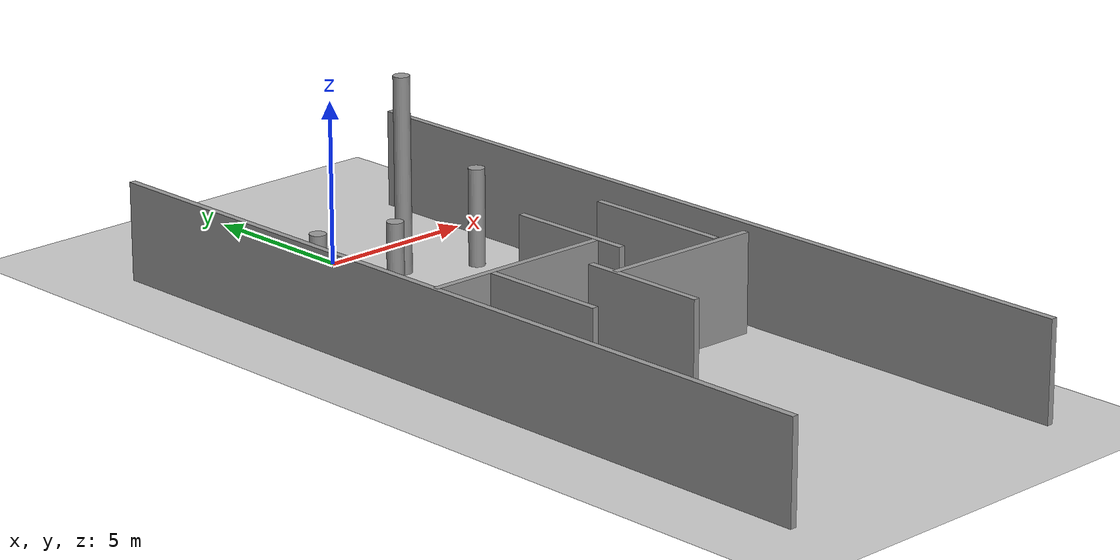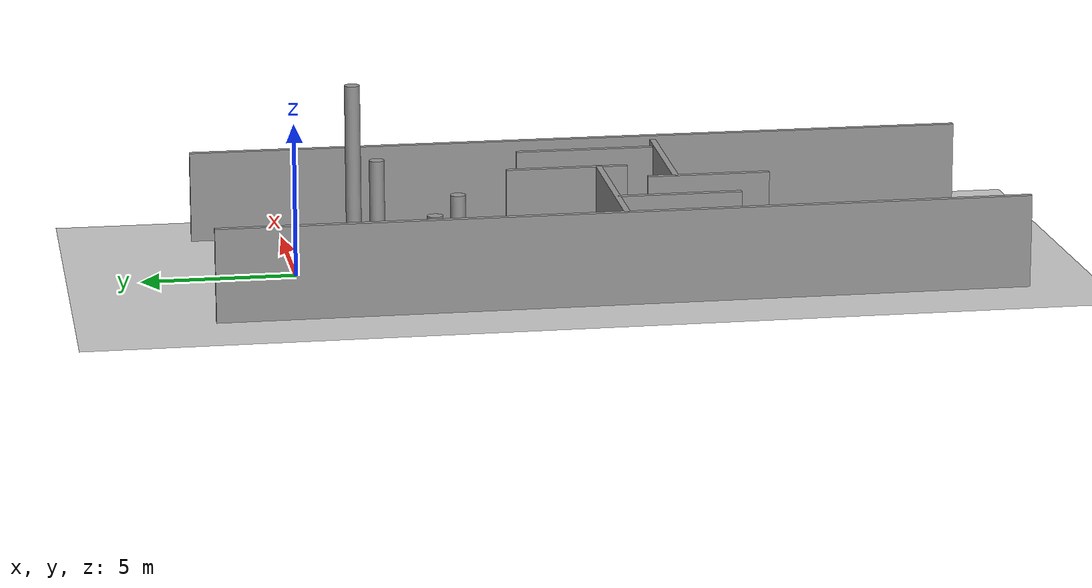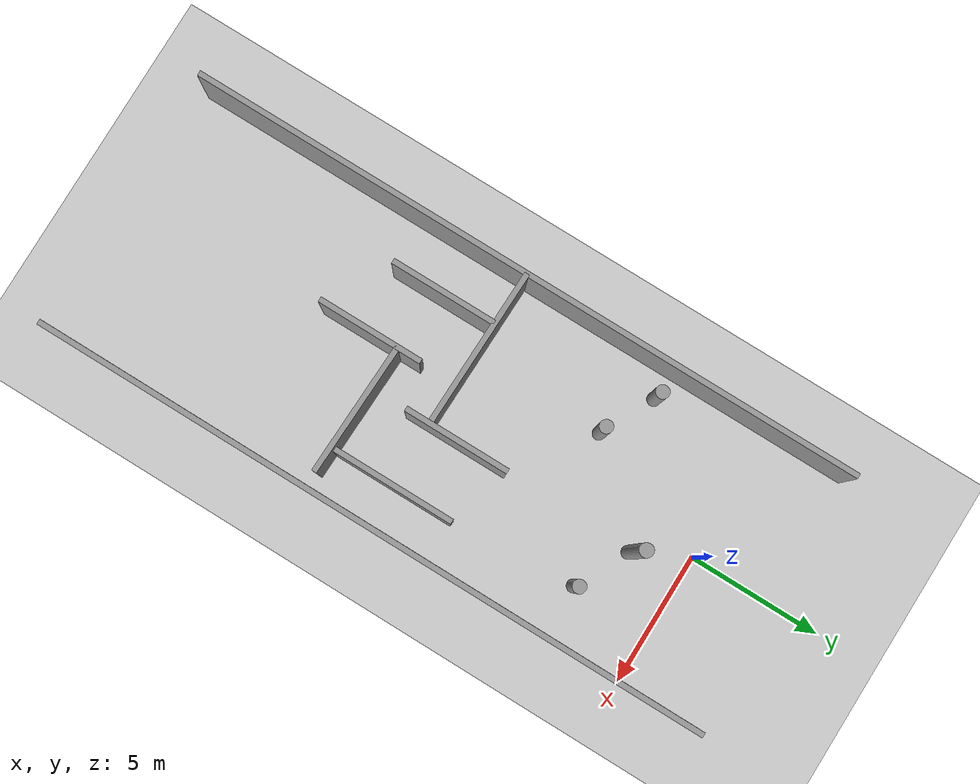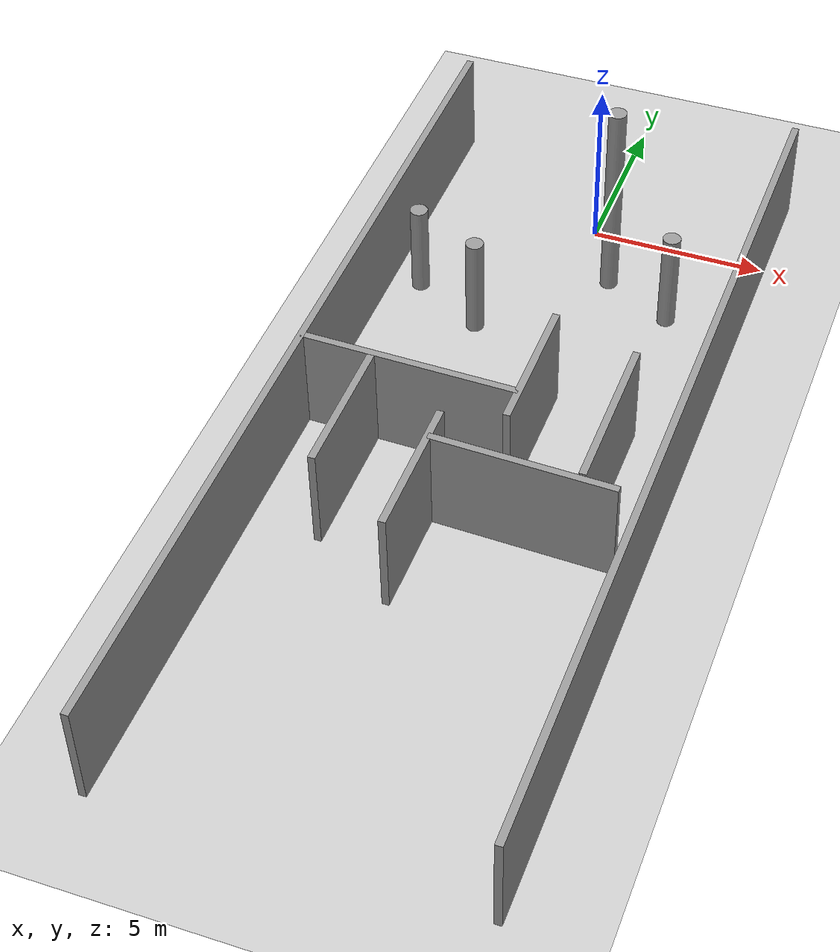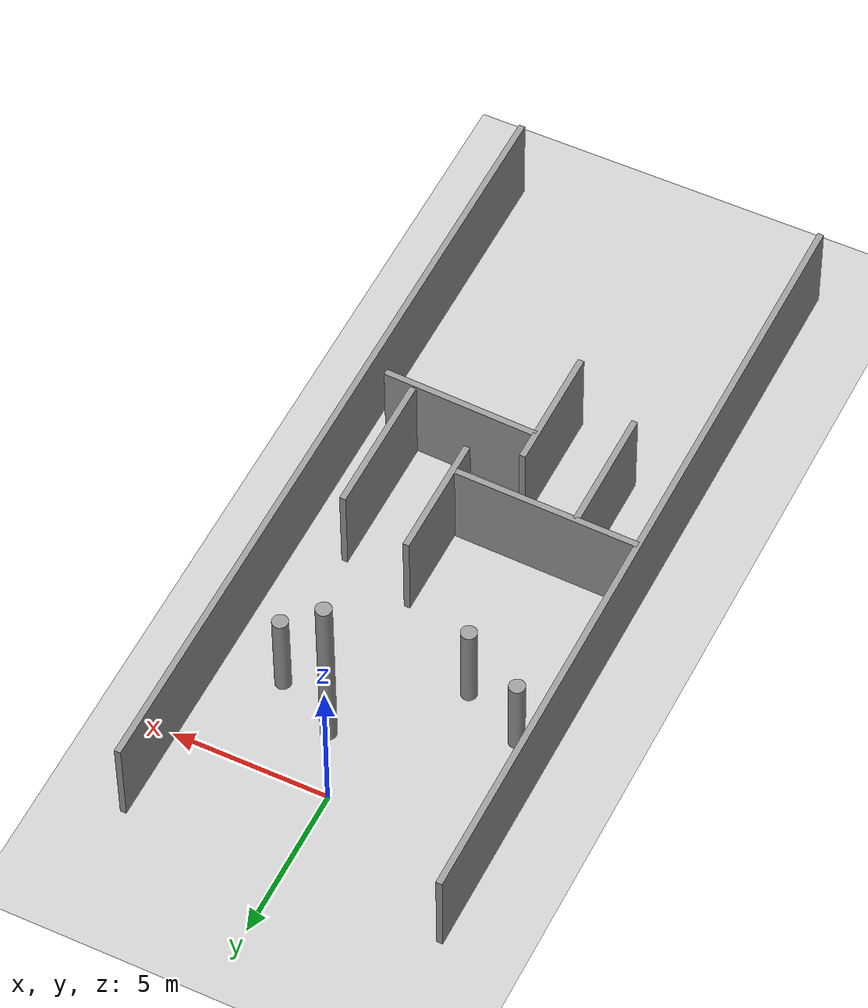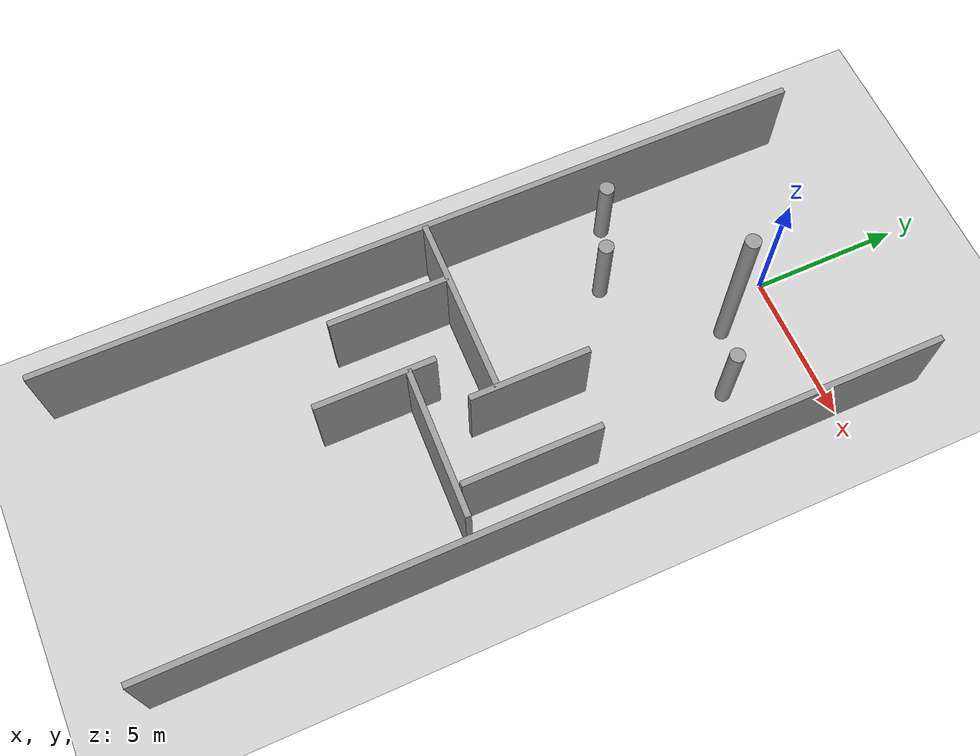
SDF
<sdf version="1.6">
 <world name="default">
  <model name="ground_plane">
   <static>1</static>
   <link name="link">
    <collision name="collision">
     <geometry><plane><normal>0 0 1</normal><size>100 100</size></plane></geometry>
     <surface><friction><ode><mu>100</mu><mu2>50</mu2></ode></friction></surface>
    </collision>
    <visual name="visual">
     <cast_shadows>0</cast_shadows>
     <geometry><plane><normal>0 0 1</normal><size>100 100</size></plane></geometry>
     <material>
      <script><uri>file://media/materials/scripts/gazebo.material</uri><name>Gazebo/Grey</name></script>
     </material>
    </visual>
    <velocity_decay><linear>0</linear><angular>0</angular></velocity_decay>
   </link>
  </model>
  <model name="obstacle1">
   <link name="link">
    <inertial>
     <mass>1</mass>
     <inertia>
      <ixx>0.166667</ixx>
      <ixy>0</ixy>
      <ixz>0</ixz>
      <iyy>0.166667</iyy>
      <iyz>0</iyz>
      <izz>0.166667</izz>
     </inertia>
    </inertial>
    <visual name="visual">
     <geometry><box><size>0.2 4.6 3</size></box></geometry>
     <material>
      <script><name>Gazebo/Grey</name><uri>file://media/materials/scripts/gazebo.material</uri></script>
      <ambient>0.3 0.3 0.3 1</ambient>
      <diffuse>0.7 0.7 0.7 1</diffuse>
      <specular>0.01 0.01 0.01 1</specular>
      <emissive>0 0 0 1</emissive>
      <shader type="vertex"><normal_map>__default__</normal_map></shader>
     </material>
    </visual>
    <collision name="collision">
     <geometry><box><size>0.2 4.6 3</size></box></geometry>
     <surface>
      <friction>
       <ode><mu>1</mu><mu2>1</mu2><fdir1>0 0 0</fdir1><slip1>0</slip1><slip2>0</slip2></ode>
       <torsional>
        <coefficient>1</coefficient>
        <patch_radius>0</patch_radius>
        <surface_radius>0</surface_radius>
        <use_patch_radius>1</use_patch_radius>
        <ode><slip>0</slip></ode>
       </torsional>
      </friction>
      <bounce><restitution_coefficient>0</restitution_coefficient><threshold>1e+06</threshold></bounce>
      <contact>
       <collide_without_contact>0</collide_without_contact>
       <collide_without_contact_bitmask>1</collide_without_contact_bitmask>
       <collide_bitmask>1</collide_bitmask>
       <ode>
        <soft_cfm>0</soft_cfm>
        <soft_erp>0.2</soft_erp>
        <kp>1e+13</kp>
        <kd>1</kd>
        <max_vel>0.01</max_vel>
        <min_depth>0</min_depth>
       </ode>
       <bullet>
        <split_impulse>1</split_impulse>
        <split_impulse_penetration_threshold>-0.01</split_impulse_penetration_threshold>
        <soft_cfm>0</soft_cfm>
        <soft_erp>0.2</soft_erp>
        <kp>1e+13</kp>
        <kd>1</kd>
       </bullet>
      </contact>
     </surface>
    </collision>
   </link>
   <static>1</static>
   <pose>3.4 -10 1.5 0 -0 0</pose>
  </model>
  <model name="obstacle2">
   <link name="link">
    <inertial>
     <mass>1</mass>
     <inertia>
      <ixx>0.166667</ixx>
      <ixy>0</ixy>
      <ixz>0</ixz>
      <iyy>0.166667</iyy>
      <iyz>0</iyz>
      <izz>0.166667</izz>
     </inertia>
    </inertial>
    <visual name="visual">
     <geometry><box><size>0.2 5 3</size></box></geometry>
     <material>
      <script><name>Gazebo/Grey</name><uri>file://media/materials/scripts/gazebo.material</uri></script>
      <ambient>0.3 0.3 0.3 1</ambient>
      <diffuse>0.7 0.7 0.7 1</diffuse>
      <specular>0.01 0.01 0.01 1</specular>
      <emissive>0 0 0 1</emissive>
      <shader type="vertex"><normal_map>__default__</normal_map></shader>
     </material>
    </visual>
    <collision name="collision">
     <geometry><box><size>0.2 5 3</size></box></geometry>
     <surface>
      <friction>
       <ode><mu>1</mu><mu2>1</mu2><fdir1>0 0 0</fdir1><slip1>0</slip1><slip2>0</slip2></ode>
       <torsional>
        <coefficient>1</coefficient>
        <patch_radius>0</patch_radius>
        <surface_radius>0</surface_radius>
        <use_patch_radius>1</use_patch_radius>
        <ode><slip>0</slip></ode>
       </torsional>
      </friction>
      <bounce><restitution_coefficient>0</restitution_coefficient><threshold>1e+06</threshold></bounce>
      <contact>
       <collide_without_contact>0</collide_without_contact>
       <collide_without_contact_bitmask>1</collide_without_contact_bitmask>
       <collide_bitmask>1</collide_bitmask>
       <ode>
        <soft_cfm>0</soft_cfm>
        <soft_erp>0.2</soft_erp>
        <kp>1e+13</kp>
        <kd>1</kd>
        <max_vel>0.01</max_vel>
        <min_depth>0</min_depth>
       </ode>
       <bullet>
        <split_impulse>1</split_impulse>
        <split_impulse_penetration_threshold>-0.01</split_impulse_penetration_threshold>
        <soft_cfm>0</soft_cfm>
        <soft_erp>0.2</soft_erp>
        <kp>1e+13</kp>
        <kd>1</kd>
       </bullet>
      </contact>
     </surface>
    </collision>
   </link>
   <static>1</static>
   <pose>1.9 -12.4 1.5 0 -0 1.53692</pose>
  </model>
  <model name="obstacle3">
   <link name="link">
    <inertial>
     <mass>1</mass>
     <inertia>
      <ixx>0.166667</ixx>
      <ixy>0</ixy>
      <ixz>0</ixz>
      <iyy>0.166667</iyy>
      <iyz>0</iyz>
      <izz>0.166667</izz>
     </inertia>
    </inertial>
    <visual name="visual">
     <geometry><box><size>0.2 4 3</size></box></geometry>
     <material>
      <script><name>Gazebo/Grey</name><uri>file://media/materials/scripts/gazebo.material</uri></script>
      <ambient>0.3 0.3 0.3 1</ambient>
      <diffuse>0.7 0.7 0.7 1</diffuse>
      <specular>0.01 0.01 0.01 1</specular>
      <emissive>0 0 0 1</emissive>
      <shader type="vertex"><normal_map>__default__</normal_map></shader>
     </material>
    </visual>
    <collision name="collision">
     <geometry><box><size>0.2 4 3</size></box></geometry>
     <surface>
      <friction>
       <ode><mu>1</mu><mu2>1</mu2><fdir1>0 0 0</fdir1><slip1>0</slip1><slip2>0</slip2></ode>
       <torsional>
        <coefficient>1</coefficient>
        <patch_radius>0</patch_radius>
        <surface_radius>0</surface_radius>
        <use_patch_radius>1</use_patch_radius>
        <ode><slip>0</slip></ode>
       </torsional>
      </friction>
      <bounce><restitution_coefficient>0</restitution_coefficient><threshold>1e+06</threshold></bounce>
      <contact>
       <collide_without_contact>0</collide_without_contact>
       <collide_without_contact_bitmask>1</collide_without_contact_bitmask>
       <collide_bitmask>1</collide_bitmask>
       <ode>
        <soft_cfm>0</soft_cfm>
        <soft_erp>0.2</soft_erp>
        <kp>1e+13</kp>
        <kd>1</kd>
        <max_vel>0.01</max_vel>
        <min_depth>0</min_depth>
       </ode>
       <bullet>
        <split_impulse>1</split_impulse>
        <split_impulse_penetration_threshold>-0.01</split_impulse_penetration_threshold>
        <soft_cfm>0</soft_cfm>
        <soft_erp>0.2</soft_erp>
        <kp>1e+13</kp>
        <kd>1</kd>
       </bullet>
      </contact>
     </surface>
    </collision>
   </link>
   <static>1</static>
   <pose>-0.6 -13.4 1.5 0 -0 0</pose>
  </model>
  <model name="obstacle4">
   <link name="link">
    <inertial>
     <mass>1</mass>
     <inertia>
      <ixx>0.166667</ixx>
      <ixy>0</ixy>
      <ixz>0</ixz>
      <iyy>0.166667</iyy>
      <iyz>0</iyz>
      <izz>0.166667</izz>
     </inertia>
    </inertial>
    <visual name="visual">
     <geometry><box><size>0.2 6 3</size></box></geometry>
     <material>
      <script><name>Gazebo/Grey</name><uri>file://media/materials/scripts/gazebo.material</uri></script>
      <ambient>0.3 0.3 0.3 1</ambient>
      <diffuse>0.7 0.7 0.7 1</diffuse>
      <specular>0.01 0.01 0.01 1</specular>
      <emissive>0 0 0 1</emissive>
      <shader type="vertex"><normal_map>__default__</normal_map></shader>
     </material>
    </visual>
    <collision name="collision">
     <geometry><box><size>0.2 6 3</size></box></geometry>
     <surface>
      <friction>
       <ode><mu>1</mu><mu2>1</mu2><fdir1>0 0 0</fdir1><slip1>0</slip1><slip2>0</slip2></ode>
       <torsional>
        <coefficient>1</coefficient>
        <patch_radius>0</patch_radius>
        <surface_radius>0</surface_radius>
        <use_patch_radius>1</use_patch_radius>
        <ode><slip>0</slip></ode>
       </torsional>
      </friction>
      <bounce><restitution_coefficient>0</restitution_coefficient><threshold>1e+06</threshold></bounce>
      <contact>
       <collide_without_contact>0</collide_without_contact>
       <collide_without_contact_bitmask>1</collide_without_contact_bitmask>
       <collide_bitmask>1</collide_bitmask>
       <ode>
        <soft_cfm>0</soft_cfm>
        <soft_erp>0.2</soft_erp>
        <kp>1e+13</kp>
        <kd>1</kd>
        <max_vel>0.01</max_vel>
        <min_depth>0</min_depth>
       </ode>
       <bullet>
        <split_impulse>1</split_impulse>
        <split_impulse_penetration_threshold>-0.01</split_impulse_penetration_threshold>
        <soft_cfm>0</soft_cfm>
        <soft_erp>0.2</soft_erp>
        <kp>1e+13</kp>
        <kd>1</kd>
       </bullet>
      </contact>
     </surface>
    </collision>
   </link>
   <static>1</static>
   <pose>-2 -10 1.5 0 -0 1.54887</pose>
  </model>
  <model name="obstacle5">
   <link name="link">
    <inertial>
     <mass>1</mass>
     <inertia>
      <ixx>0.166667</ixx>
      <ixy>0</ixy>
      <ixz>0</ixz>
      <iyy>0.166667</iyy>
      <iyz>0</iyz>
      <izz>0.166667</izz>
     </inertia>
    </inertial>
    <visual name="visual">
     <geometry><box><size>0.2 4 3</size></box></geometry>
     <material>
      <script><name>Gazebo/Grey</name><uri>file://media/materials/scripts/gazebo.material</uri></script>
      <ambient>0.3 0.3 0.3 1</ambient>
      <diffuse>0.7 0.7 0.7 1</diffuse>
      <specular>0.01 0.01 0.01 1</specular>
      <emissive>0 0 0 1</emissive>
      <shader type="vertex"><normal_map>__default__</normal_map></shader>
     </material>
    </visual>
    <collision name="collision">
     <geometry><box><size>0.2 4 3</size></box></geometry>
     <surface>
      <friction>
       <ode><mu>1</mu><mu2>1</mu2><fdir1>0 0 0</fdir1><slip1>0</slip1><slip2>0</slip2></ode>
       <torsional>
        <coefficient>1</coefficient>
        <patch_radius>0</patch_radius>
        <surface_radius>0</surface_radius>
        <use_patch_radius>1</use_patch_radius>
        <ode><slip>0</slip></ode>
       </torsional>
      </friction>
      <bounce><restitution_coefficient>0</restitution_coefficient><threshold>1e+06</threshold></bounce>
      <contact>
       <collide_without_contact>0</collide_without_contact>
       <collide_without_contact_bitmask>1</collide_without_contact_bitmask>
       <collide_bitmask>1</collide_bitmask>
       <ode>
        <soft_cfm>0</soft_cfm>
        <soft_erp>0.2</soft_erp>
        <kp>1e+13</kp>
        <kd>1</kd>
        <max_vel>0.01</max_vel>
        <min_depth>0</min_depth>
       </ode>
       <bullet>
        <split_impulse>1</split_impulse>
        <split_impulse_penetration_threshold>-0.01</split_impulse_penetration_threshold>
        <soft_cfm>0</soft_cfm>
        <soft_erp>0.2</soft_erp>
        <kp>1e+13</kp>
        <kd>1</kd>
       </bullet>
      </contact>
     </surface>
    </collision>
   </link>
   <static>1</static>
   <pose>1 -9 1.5 0 -0 0</pose>
  </model>
  <model name="obstacle6">
   <link name="link">
    <inertial>
     <mass>1</mass>
     <inertia>
      <ixx>0.166667</ixx>
      <ixy>0</ixy>
      <ixz>0</ixz>
      <iyy>0.166667</iyy>
      <iyz>0</iyz>
      <izz>0.166667</izz>
     </inertia>
    </inertial>
    <visual name="visual">
     <geometry><box><size>0.2 4 3</size></box></geometry>
     <material>
      <script><name>Gazebo/Grey</name><uri>file://media/materials/scripts/gazebo.material</uri></script>
      <ambient>0.3 0.3 0.3 1</ambient>
      <diffuse>0.7 0.7 0.7 1</diffuse>
      <specular>0.01 0.01 0.01 1</specular>
      <emissive>0 0 0 1</emissive>
      <shader type="vertex"><normal_map>__default__</normal_map></shader>
     </material>
    </visual>
    <collision name="collision">
     <geometry><box><size>0.2 4 3</size></box></geometry>
     <surface>
      <friction>
       <ode><mu>1</mu><mu2>1</mu2><fdir1>0 0 0</fdir1><slip1>0</slip1><slip2>0</slip2></ode>
       <torsional>
        <coefficient>1</coefficient>
        <patch_radius>0</patch_radius>
        <surface_radius>0</surface_radius>
        <use_patch_radius>1</use_patch_radius>
        <ode><slip>0</slip></ode>
       </torsional>
      </friction>
      <bounce><restitution_coefficient>0</restitution_coefficient><threshold>1e+06</threshold></bounce>
      <contact>
       <collide_without_contact>0</collide_without_contact>
       <collide_without_contact_bitmask>1</collide_without_contact_bitmask>
       <collide_bitmask>1</collide_bitmask>
       <ode>
        <soft_cfm>0</soft_cfm>
        <soft_erp>0.2</soft_erp>
        <kp>1e+13</kp>
        <kd>1</kd>
        <max_vel>0.01</max_vel>
        <min_depth>0</min_depth>
       </ode>
       <bullet>
        <split_impulse>1</split_impulse>
        <split_impulse_penetration_threshold>-0.01</split_impulse_penetration_threshold>
        <soft_cfm>0</soft_cfm>
        <soft_erp>0.2</soft_erp>
        <kp>1e+13</kp>
        <kd>1</kd>
       </bullet>
      </contact>
     </surface>
    </collision>
   </link>
   <static>1</static>
   <pose>-3 -12 1.5 0 -0 0</pose>
  </model>
  <model name="left_wall">
   <link name="link">
    <inertial>
     <mass>1</mass>
     <inertia>
      <ixx>0.166667</ixx>
      <ixy>0</ixy>
      <ixz>0</ixz>
      <iyy>0.166667</iyy>
      <iyz>0</iyz>
      <izz>0.166667</izz>
     </inertia>
    </inertial>
    <self_collide>1</self_collide>
    <visual name="visual">
     <geometry><box><size>0.2 26 3</size></box></geometry>
     <material>
      <script><name>Gazebo/Grey</name><uri>file://media/materials/scripts/gazebo.material</uri></script>
      <ambient>0.3 0.3 0.3 1</ambient>
      <diffuse>0.7 0.7 0.7 1</diffuse>
      <specular>0.01 0.01 0.01 1</specular>
      <emissive>0 0 0 1</emissive>
      <shader type="vertex"><normal_map>__default__</normal_map></shader>
     </material>
    </visual>
    <collision name="collision">
     <geometry><box><size>0.2 26 3</size></box></geometry>
     <surface>
      <friction>
       <ode><mu>1</mu><mu2>1</mu2><fdir1>0 0 0</fdir1><slip1>0</slip1><slip2>0</slip2></ode>
       <torsional>
        <coefficient>1</coefficient>
        <patch_radius>0</patch_radius>
        <surface_radius>0</surface_radius>
        <use_patch_radius>1</use_patch_radius>
        <ode><slip>0</slip></ode>
       </torsional>
      </friction>
      <bounce><restitution_coefficient>0</restitution_coefficient><threshold>1e+06</threshold></bounce>
      <contact>
       <collide_without_contact>0</collide_without_contact>
       <collide_without_contact_bitmask>1</collide_without_contact_bitmask>
       <collide_bitmask>1</collide_bitmask>
       <ode>
        <soft_cfm>0</soft_cfm>
        <soft_erp>0.2</soft_erp>
        <kp>1e+13</kp>
        <kd>1</kd>
        <max_vel>0.01</max_vel>
        <min_depth>0</min_depth>
       </ode>
       <bullet>
        <split_impulse>1</split_impulse>
        <split_impulse_penetration_threshold>-0.01</split_impulse_penetration_threshold>
        <soft_cfm>0</soft_cfm>
        <soft_erp>0.2</soft_erp>
        <kp>1e+13</kp>
        <kd>1</kd>
       </bullet>
      </contact>
     </surface>
    </collision>
   </link>
   <static>1</static>
   <pose>5 -10 1.5 0 -0 0</pose>
  </model>
  <model name="right_wall">
   <link name="link">
    <inertial>
     <mass>1</mass>
     <inertia>
      <ixx>0.166667</ixx>
      <ixy>0</ixy>
      <ixz>0</ixz>
      <iyy>0.166667</iyy>
      <iyz>0</iyz>
      <izz>0.166667</izz>
     </inertia>
    </inertial>
    <visual name="visual">
     <geometry><box><size>0.2 26 3</size></box></geometry>
     <material>
      <script><name>Gazebo/Grey</name><uri>file://media/materials/scripts/gazebo.material</uri></script>
      <ambient>0.3 0.3 0.3 1</ambient>
      <diffuse>0.7 0.7 0.7 1</diffuse>
      <specular>0.01 0.01 0.01 1</specular>
      <emissive>0 0 0 1</emissive>
      <shader type="vertex"><normal_map>__default__</normal_map></shader>
     </material>
    </visual>
    <collision name="collision">
     <geometry><box><size>0.2 26 3</size></box></geometry>
     <surface>
      <friction>
       <ode><mu>1</mu><mu2>1</mu2><fdir1>0 0 0</fdir1><slip1>0</slip1><slip2>0</slip2></ode>
       <torsional>
        <coefficient>1</coefficient>
        <patch_radius>0</patch_radius>
        <surface_radius>0</surface_radius>
        <use_patch_radius>1</use_patch_radius>
        <ode><slip>0</slip></ode>
       </torsional>
      </friction>
      <bounce><restitution_coefficient>0</restitution_coefficient><threshold>1e+06</threshold></bounce>
      <contact>
       <collide_without_contact>0</collide_without_contact>
       <collide_without_contact_bitmask>1</collide_without_contact_bitmask>
       <collide_bitmask>1</collide_bitmask>
       <ode>
        <soft_cfm>0</soft_cfm>
        <soft_erp>0.2</soft_erp>
        <kp>1e+13</kp>
        <kd>1</kd>
        <max_vel>0.01</max_vel>
        <min_depth>0</min_depth>
       </ode>
       <bullet>
        <split_impulse>1</split_impulse>
        <split_impulse_penetration_threshold>-0.01</split_impulse_penetration_threshold>
        <soft_cfm>0</soft_cfm>
        <soft_erp>0.2</soft_erp>
        <kp>1e+13</kp>
        <kd>1</kd>
       </bullet>
      </contact>
     </surface>
    </collision>
   </link>
   <static>1</static>
   <pose>-5 -10 1.5 0 -0 0</pose>
  </model>
  <model name="box_3">
   <link name="link">
    <inertial>
     <mass>1</mass>
     <inertia><ixx>0.145833</ixx><ixy>0</ixy><ixz>0</ixz><iyy>0.145833</iyy><iyz>0</iyz><izz>0.125</izz></inertia>
    </inertial>
    <visual name="visual">
     <geometry><cylinder><radius>0.25</radius><length>3</length></cylinder></geometry>
     <material>
      <script><name>Gazebo/Grey</name><uri>file://media/materials/scripts/gazebo.material</uri></script>
      <ambient>0.3 0.3 0.3 1</ambient>
      <diffuse>0.7 0.7 0.7 1</diffuse>
      <specular>0.01 0.01 0.01 1</specular>
      <emissive>0 0 0 1</emissive>
      <shader type="vertex"><normal_map>__default__</normal_map></shader>
     </material>
    </visual>
    <collision name="collision">
     <geometry><cylinder><radius>0.25</radius><length>3</length></cylinder></geometry>
     <surface>
      <friction>
       <ode><mu>1</mu><mu2>1</mu2><fdir1>0 0 0</fdir1><slip1>0</slip1><slip2>0</slip2></ode>
       <torsional>
        <coefficient>1</coefficient>
        <patch_radius>0</patch_radius>
        <surface_radius>0</surface_radius>
        <use_patch_radius>1</use_patch_radius>
        <ode><slip>0</slip></ode>
       </torsional>
      </friction>
      <bounce><restitution_coefficient>0</restitution_coefficient><threshold>1e+06</threshold></bounce>
      <contact>
       <collide_without_contact>0</collide_without_contact>
       <collide_without_contact_bitmask>1</collide_without_contact_bitmask>
       <collide_bitmask>1</collide_bitmask>
       <ode>
        <soft_cfm>0</soft_cfm>
        <soft_erp>0.2</soft_erp>
        <kp>1e+13</kp>
        <kd>1</kd>
        <max_vel>0.01</max_vel>
        <min_depth>0</min_depth>
       </ode>
       <bullet>
        <split_impulse>1</split_impulse>
        <split_impulse_penetration_threshold>-0.01</split_impulse_penetration_threshold>
        <soft_cfm>0</soft_cfm>
        <soft_erp>0.2</soft_erp>
        <kp>1e+13</kp>
        <kd>1</kd>
       </bullet>
      </contact>
     </surface>
    </collision>
   </link>
   <static>0</static>
   <pose>-2.00041 -4.99763 1.49988 -3e-05 -7e-06 0.051526</pose>
  </model>
  <model name="box_4">
   <link name="link">
    <inertial>
     <mass>1</mass>
     <inertia><ixx>0.145833</ixx><ixy>0</ixy><ixz>0</ixz><iyy>0.145833</iyy><iyz>0</iyz><izz>0.125</izz></inertia>
    </inertial>
    <visual name="visual">
     <geometry><cylinder><radius>0.25</radius><length>2.73299</length></cylinder></geometry>
     <material>
      <script><name>Gazebo/Grey</name><uri>file://media/materials/scripts/gazebo.material</uri></script>
      <ambient>0.3 0.3 0.3 1</ambient>
      <diffuse>0.7 0.7 0.7 1</diffuse>
      <specular>0.01 0.01 0.01 1</specular>
      <emissive>0 0 0 1</emissive>
      <shader type="vertex"><normal_map>__default__</normal_map></shader>
     </material>
    </visual>
    <collision name="collision">
     <geometry><cylinder><radius>0.25</radius><length>3</length></cylinder></geometry>
     <surface>
      <friction>
       <ode><mu>1</mu><mu2>1</mu2><fdir1>0 0 0</fdir1><slip1>0</slip1><slip2>0</slip2></ode>
       <torsional>
        <coefficient>1</coefficient>
        <patch_radius>0</patch_radius>
        <surface_radius>0</surface_radius>
        <use_patch_radius>1</use_patch_radius>
        <ode><slip>0</slip></ode>
       </torsional>
      </friction>
      <bounce><restitution_coefficient>0</restitution_coefficient><threshold>1e+06</threshold></bounce>
      <contact>
       <collide_without_contact>0</collide_without_contact>
       <collide_without_contact_bitmask>1</collide_without_contact_bitmask>
       <collide_bitmask>1</collide_bitmask>
       <ode>
        <soft_cfm>0</soft_cfm>
        <soft_erp>0.2</soft_erp>
        <kp>1e+13</kp>
        <kd>1</kd>
        <max_vel>0.01</max_vel>
        <min_depth>0</min_depth>
       </ode>
       <bullet>
        <split_impulse>1</split_impulse>
        <split_impulse_penetration_threshold>-0.01</split_impulse_penetration_threshold>
        <soft_cfm>0</soft_cfm>
        <soft_erp>0.2</soft_erp>
        <kp>1e+13</kp>
        <kd>1</kd>
       </bullet>
      </contact>
     </surface>
    </collision>
   </link>
   <static>0</static>
   <pose>-4.00041 -3.99763 1.49988 -3e-05 -7e-06 0.051526</pose>
  </model>
  <model name="box_2">
   <link name="link">
    <inertial>
     <mass>1</mass>
     <inertia><ixx>0.145833</ixx><ixy>0</ixy><ixz>0</ixz><iyy>0.145833</iyy><iyz>0</iyz><izz>0.125</izz></inertia>
    </inertial>
    <visual name="visual">
     <geometry><cylinder><radius>0.25</radius><length>3</length></cylinder></geometry>
     <material>
      <script><name>Gazebo/Grey</name><uri>file://media/materials/scripts/gazebo.material</uri></script>
      <ambient>0.3 0.3 0.3 1</ambient>
      <diffuse>0.7 0.7 0.7 1</diffuse>
      <specular>0.01 0.01 0.01 1</specular>
      <emissive>0 0 0 1</emissive>
      <shader type="vertex"><normal_map>__default__</normal_map></shader>
     </material>
    </visual>
    <collision name="collision">
     <geometry><cylinder><radius>0.25</radius><length>3</length></cylinder></geometry>
     <surface>
      <friction>
       <ode><mu>1</mu><mu2>1</mu2><fdir1>0 0 0</fdir1><slip1>0</slip1><slip2>0</slip2></ode>
       <torsional>
        <coefficient>1</coefficient>
        <patch_radius>0</patch_radius>
        <surface_radius>0</surface_radius>
        <use_patch_radius>1</use_patch_radius>
        <ode><slip>0</slip></ode>
       </torsional>
      </friction>
      <bounce><restitution_coefficient>0</restitution_coefficient><threshold>1e+06</threshold></bounce>
      <contact>
       <collide_without_contact>0</collide_without_contact>
       <collide_without_contact_bitmask>1</collide_without_contact_bitmask>
       <collide_bitmask>1</collide_bitmask>
       <ode>
        <soft_cfm>0</soft_cfm>
        <soft_erp>0.2</soft_erp>
        <kp>1e+13</kp>
        <kd>1</kd>
        <max_vel>0.01</max_vel>
        <min_depth>0</min_depth>
       </ode>
       <bullet>
        <split_impulse>1</split_impulse>
        <split_impulse_penetration_threshold>-0.01</split_impulse_penetration_threshold>
        <soft_cfm>0</soft_cfm>
        <soft_erp>0.2</soft_erp>
        <kp>1e+13</kp>
        <kd>1</kd>
       </bullet>
      </contact>
     </surface>
    </collision>
   </link>
   <static>0</static>
   <pose>2.99959 -2.99763 1.49988 -3e-05 -7e-06 0.051526</pose>
  </model>
  <model name="box_1">
   <link name="link">
    <inertial>
     <mass>1</mass>
     <inertia><ixx>0.145833</ixx><ixy>0</ixy><ixz>0</ixz><iyy>0.145833</iyy><iyz>0</iyz><izz>0.125</izz></inertia>
    </inertial>
    <visual name="visual">
     <geometry><cylinder><radius>0.25</radius><length>6</length></cylinder></geometry>
     <material>
      <script><name>Gazebo/Grey</name><uri>file://media/materials/scripts/gazebo.material</uri></script>
      <ambient>0.3 0.3 0.3 1</ambient>
      <diffuse>0.7 0.7 0.7 1</diffuse>
      <specular>0.01 0.01 0.01 1</specular>
      <emissive>0 0 0 1</emissive>
      <shader type="vertex"><normal_map>__default__</normal_map></shader>
     </material>
    </visual>
    <collision name="collision">
     <geometry><cylinder><radius>0.25</radius><length>6</length></cylinder></geometry>
     <surface>
      <friction>
       <ode><mu>1</mu><mu2>1</mu2><fdir1>0 0 0</fdir1><slip1>0</slip1><slip2>0</slip2></ode>
       <torsional>
        <coefficient>1</coefficient>
        <patch_radius>0</patch_radius>
        <surface_radius>0</surface_radius>
        <use_patch_radius>1</use_patch_radius>
        <ode><slip>0</slip></ode>
       </torsional>
      </friction>
      <bounce><restitution_coefficient>0</restitution_coefficient><threshold>1e+06</threshold></bounce>
      <contact>
       <collide_without_contact>0</collide_without_contact>
       <collide_without_contact_bitmask>1</collide_without_contact_bitmask>
       <collide_bitmask>1</collide_bitmask>
       <ode>
        <soft_cfm>0</soft_cfm>
        <soft_erp>0.2</soft_erp>
        <kp>1e+13</kp>
        <kd>1</kd>
        <max_vel>0.01</max_vel>
        <min_depth>0</min_depth>
       </ode>
       <bullet>
        <split_impulse>1</split_impulse>
        <split_impulse_penetration_threshold>-0.01</split_impulse_penetration_threshold>
        <soft_cfm>0</soft_cfm>
        <soft_erp>0.2</soft_erp>
        <kp>1e+13</kp>
        <kd>1</kd>
       </bullet>
      </contact>
     </surface>
    </collision>
   </link>
   <static>0</static>
   <pose>1.00915 -1.9917 2.99992 -0.000177 -0.00014 0.105871</pose>
  </model>
 </world>
</sdf>
